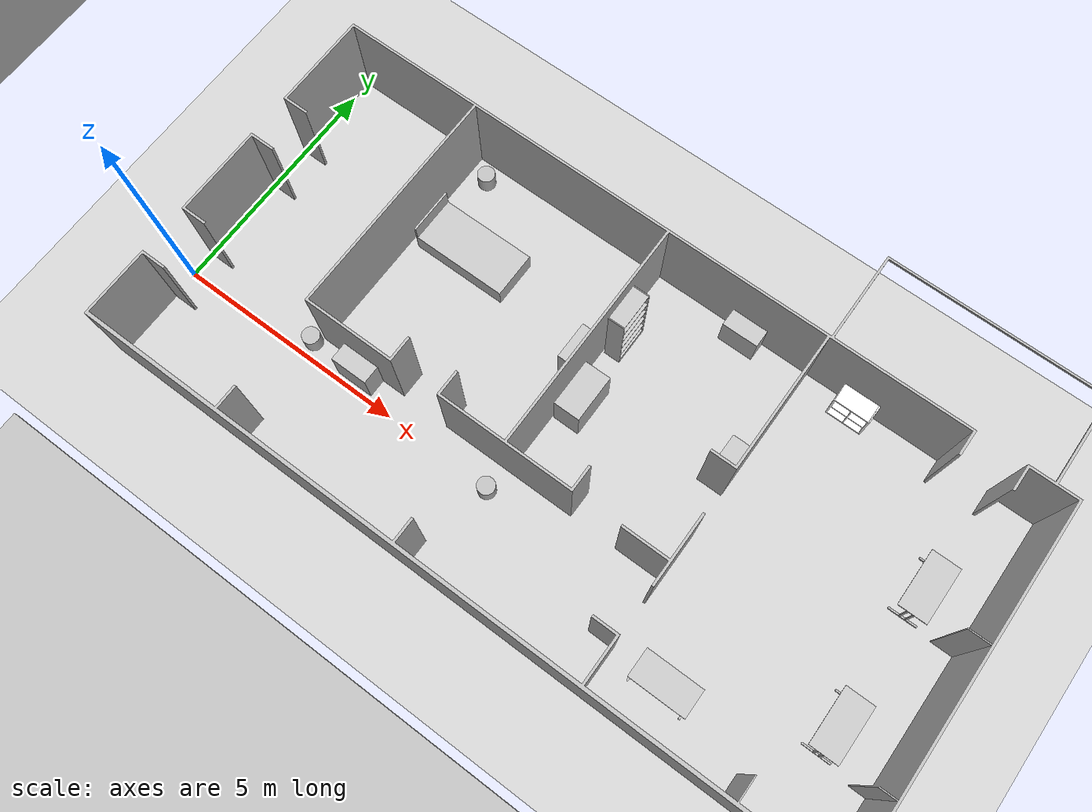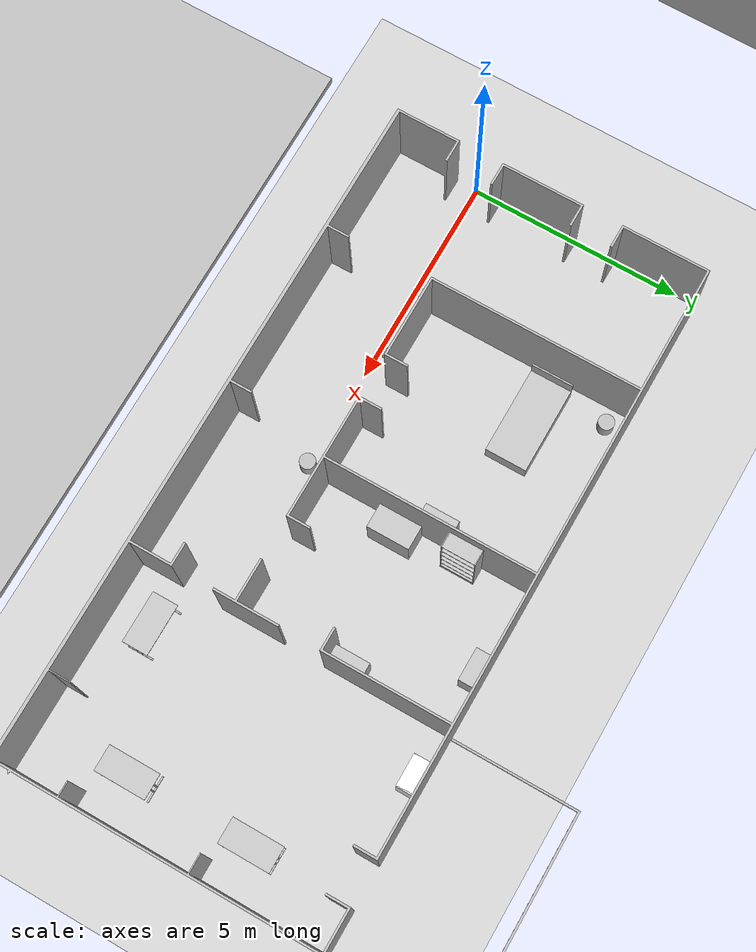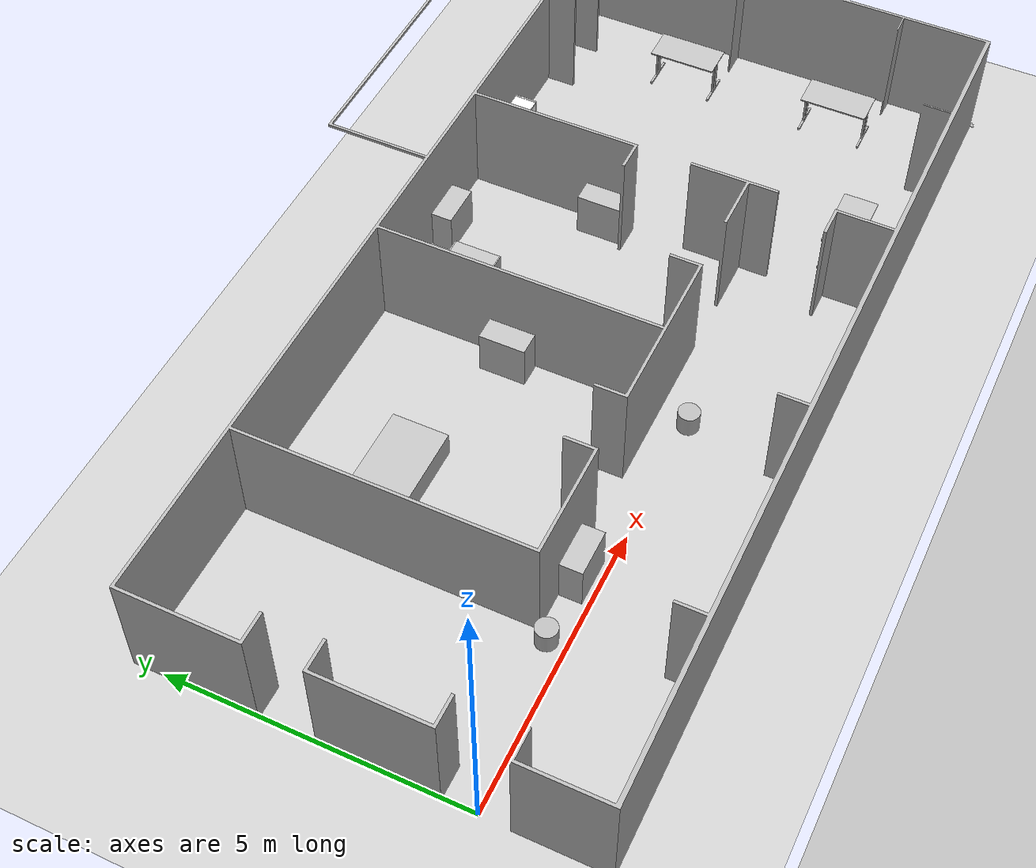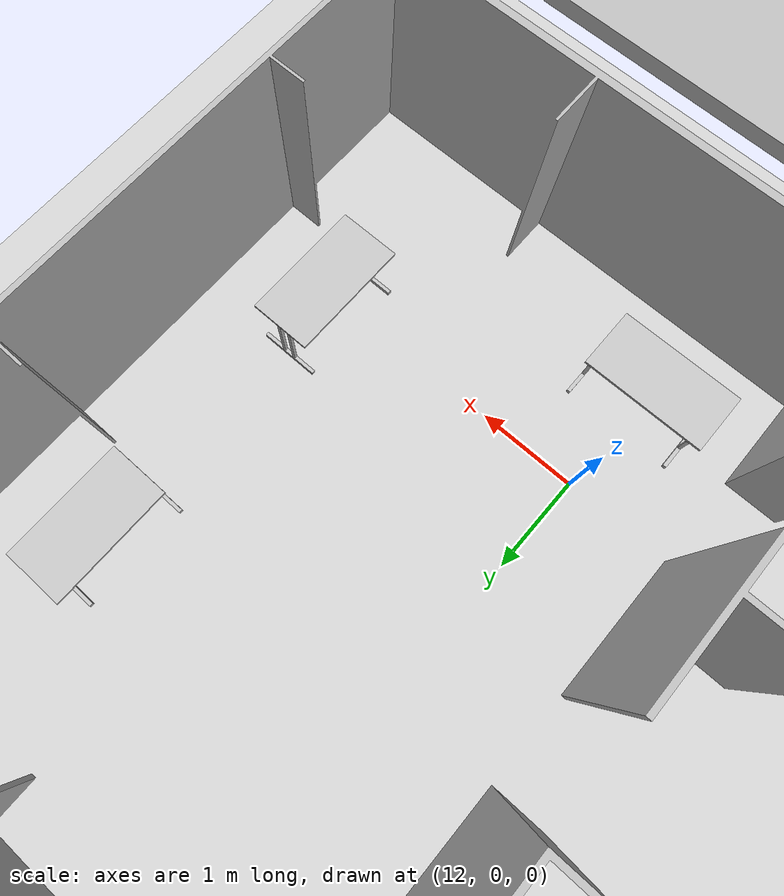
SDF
<?xml version="1.0"?>
<sdf version="1.6">
  <world name="rwc2016b">
    <light name="sun" type="directional">
      <direction>0.5 0.1 -0.9</direction>
      <pose>0 0 10 0 0 0</pose>
      <specular>0.2 0.2 0.2 1</specular>
      <cast_shadows>true</cast_shadows>
      <diffuse>0.8 0.8 0.8 1</diffuse>
      <attenuation>
        <range>1000</range>
        <quadratic>0.001</quadratic>
        <constant>0.9</constant>
        <linear>0.01</linear>
      </attenuation>
    </light>
    <model name="dining_room" type="room">
      <link name="in">
        <virtual_volume name="in_vv">
          <geometry>
            <box>
              <size>5.0 3.92 0.01</size>
            </box>
          </geometry>
          <pose>-0.06 1.27 0.005 0 0 0</pose>
        </virtual_volume>
      </link>
      <pose>13.45 2.25 0 0 0 0</pose>
      <static>true</static>
    </model>
    <model name="kitchen" type="room">
      <link name="in">
        <virtual_volume name="in_vv">
          <geometry>
            <box>
              <size>3.43 4.93 0.01</size>
            </box>
          </geometry>
          <pose>-0.135 0.075 0.005 0 0 0</pose>
        </virtual_volume>
      </link>
      <pose>9.31 2.96 0 0 0 0</pose>
      <static>true</static>
    </model>
    <model name="living_room" type="room">
      <link name="in">
        <virtual_volume name="in_vv">
          <geometry>
            <box>
              <size>5.0 4.49 0.01</size>
            </box>
          </geometry>
          <pose>0.56 0.645 0.005 0 0 0</pose>
        </virtual_volume>
      </link>
      <pose>12.85 -0.39 0 0 0 0</pose>
      <static>true</static>
    </model>
    <model name="corridor" type="room">
      <link name="in">
        <virtual_volume name="in1_vv">
          <geometry>
            <box>
              <size>3.01 7.47 0.01</size>
            </box>
          </geometry>
          <pose>-0.265 2.385 0.005 0 0 0</pose>
        </virtual_volume>
      </link>
      <link name="in">
        <virtual_volume name="in1_vv">
          <geometry>
            <box>
              <size>3.01 7.47 0.01</size>
            </box>
          </geometry>
          <pose>-0.265 2.385 0.005 0 0 0</pose>
        </virtual_volume>
      </link>
      <pose>1.76 -0.64 0 0 0 0</pose>
      <static>true</static>
    </model>
    <model name="bedroom" type="room">
      <link name="in">
        <virtual_volume name="in_vv">
          <geometry>
            <box>
              <size>4.45 4.92 0.01</size>
            </box>
          </geometry>
          <pose>-0.125 0.77 0.005 0 0 0</pose>
        </virtual_volume>
      </link>
      <pose>5.35 2.25 0 0 0 0</pose>
      <static>true</static>
    </model>
    <model name="initial_pose_door_a" type="waypoint">
      <pose>-0.5 0.0 0 0 0 0.0</pose>
      <static>true</static>
    </model>
    <model name="initial_pose_door_b" type="waypoint">
      <pose>-0.5 3.0 0 0 0 0.0</pose>
      <static>true</static>
    </model>
    <model name="initial_pose_door_c" type="waypoint">
      <pose>14.66 5.56 0 0 0 -1.57</pose>
      <static>true</static>
    </model>
    <model name="entry_door_a" type="waypoint">
      <pose>1.0 0.0 0 0 0 0.0</pose>
      <static>true</static>
    </model>
    <model name="entry_door_b" type="waypoint">
      <pose>1.0 3.0 0 0 0 0.0</pose>
      <static>true</static>
    </model>
    <model name="entry_door_c" type="waypoint">
      <pose>14.7 4.0 0 0 0 -1.57</pose>
      <static>true</static>
    </model>
    <model name="exit_door_a" type="waypoint">
      <pose>-1.5 0.0 0 0 0 3.14</pose>
      <static>true</static>
    </model>
    <model name="exit_door_b" type="waypoint">
      <pose>-1.5 3.0 0 0 0 3.14</pose>
      <static>true</static>
    </model>
    <model name="exit_door_c" type="waypoint">
      <pose>14.7 6.5 0 0 0 1.57</pose>
      <static>true</static>
    </model>
    <model name="registration_table1" type="waypoint">
      <pose>9.7 -0.6 0 0 0 0</pose>
      <static>true</static>
    </model>
    <model name="registration_table2" type="waypoint">
      <pose>9.0 -1.4 0 0 0 0</pose>
      <static>true</static>
    </model>
    <model name="registration_table3" type="waypoint">
      <pose>8.4 -0.6 0 0 0 0</pose>
      <static>true</static>
    </model>
    <model name="exit_1_rips" type="waypoint">
      <pose>14.7 6.4 0 0 0 1.57</pose>
      <static>true</static>
    </model>
    <model name="exit_2_rips" type="waypoint">
      <pose>14.7 7.5 0 0 0 1.57</pose>
      <static>true</static>
    </model>
    <model name="exit_3_rips" type="waypoint">
      <pose>14.7 4.3 0 0 0 1.57</pose>
      <static>true</static>
    </model>
    <model name="exit_4_rips" type="waypoint">
      <pose>14.7 6.4 0 0 0 1.57</pose>
      <static>true</static>
    </model>
    <model name="navigation_target1" type="waypoint">
      <pose>9.5 -0.5 0 0 0 -1.57</pose>
      <static>true</static>
    </model>
    <model name="navigation_target2_pre" type="waypoint">
      <pose>12.0 -0.6 0 0 0 -0.87</pose>
      <static>true</static>
    </model>
    <model name="navigation_target2" type="waypoint">
      <pose>13.0 -1.0 0 0 0 -1.57</pose>
      <static>true</static>
    </model>
    <model name="navigation_target3" type="waypoint">
      <pose>2.0 1.5 0 0 0 3.14</pose>
      <static>true</static>
    </model>
    <model name="navigation_door" type="waypoint">
      <pose>-0.7 0.0 0 0 0 0.0</pose>
      <static>true</static>
    </model>
    <model name="navigation_door_1" type="waypoint">
      <pose>-0.7 0.0 0 0 0 0.0</pose>
      <static>true</static>
    </model>
    <model name="navigation_door_2" type="waypoint">
      <pose>-0.7 3.0 0 0 0 0.0</pose>
      <static>true</static>
    </model>
    <model name="navigation_reentrance_door_1" type="waypoint">
      <pose>0.0 0.0 0 0 0 0.0</pose>
      <static>true</static>
    </model>
    <model name="navigation_reentrance_door_2" type="waypoint">
      <pose>0.0 3.0 0 0 0 0.0</pose>
      <static>true</static>
    </model>
    <model name="navigation_target4" type="waypoint">
      <pose>2.0 1.5 0 0 0 0.0</pose>
      <static>true</static>
    </model>
    <model name="navigation_exit1" type="waypoint">
      <pose>-1.0 0.0 0 0 0 3.1415</pose>
      <static>true</static>
    </model>
    <model name="navigation_exit2" type="waypoint">
      <pose>-1.0 3.0 0 0 0 3.1415</pose>
      <static>true</static>
    </model>
    <model name="navigation_exit3" type="waypoint">
      <pose>-2.0 4.5 0 0 0 3.1415</pose>
      <static>true</static>
    </model>
    <model name="navigation_exit4" type="waypoint">
      <pose>-2.0 -1.0 0 0 0 3.1415</pose>
      <static>true</static>
    </model>
    <model name="door_opening_start_1" type="waypoint">
      <pose>-0.5 0.0 0 0 0 0</pose>
      <static>true</static>
    </model>
    <model name="door_opening_dest_1" type="waypoint">
      <pose>0.9 0.0 0 0 0 0</pose>
      <static>true</static>
    </model>
    <model name="door_opening_start_2" type="waypoint">
      <pose>-0.5 3.0 0 0 0 0</pose>
      <static>true</static>
    </model>
    <model name="door_opening_dest_2" type="waypoint">
      <pose>0.9 3.0 0 0 0 0</pose>
      <static>true</static>
    </model>
    <model name="gpsr_meeting_point" type="waypoint">
      <pose>2.006 -1.28 0 0 0 1.57</pose>
      <static>true</static>
    </model>
    <include>
      <pose>0 0 0 0 0 0</pose>
      <name>floor</name>
      <uri>model://ground_plane</uri>
    </include>
    <include>
      <pose>0 0 0 0 0 0</pose>
      <name>walls</name>
      <uri>model://rwc2016b/walls</uri>
    </include>
    <include>
      <pose>4.2350414095 3.61956635071 0.0 0 0 -1.57079632679</pose>
      <name>bed</name>
      <uri>model://rwc2016/bed_frame</uri>
    </include>
    <include>
      <pose>7.20064872224 3.07295793463 0.0 0 0 3.14159265359</pose>
      <name>bedside</name>
      <uri>model://rwc2016/cabinet_2doors</uri>
    </include>
    <include>
      <pose>3.44435067195 5.07663793686 0.0 0 0 0.0</pose>
      <name>plant_small_bedroom</name>
      <uri>model://rwc2016/plant</uri>
    </include>
    <include>
      <pose>7.34685494228 -0.0256348198448 0.0 0 0 0.0</pose>
      <name>plant_small_hall_1</name>
      <uri>model://rwc2016/plant</uri>
    </include>
    <include>
      <pose>7.79068520743 2.35834741039 0.0 0 0 0.0</pose>
      <name>sink</name>
      <uri>model://rwc2016/kitchen_counter</uri>
    </include>
    <include>
      <pose>9.50542128925 5.24257608022 0.0 0 0 -1.57079632679</pose>
      <name>cupboard</name>
      <uri>model://rwc2016/cabinet_2slides</uri>
    </include>
    <include>
      <pose>7.6934243492 3.89551713301 0.0 0 0 0.0</pose>
      <name>bar</name>
      <uri>model://rwc2016/bookcase_noback</uri>
    </include>
    <include>
      <pose>4.03141751655 0.320342320845 0.0 0 0 -1.57079632679</pose>
      <name>cabinet</name>
      <uri>model://rwc2016/cabinet_2doors</uri>
    </include>
    <include>
      <pose>2.843662104 0.322526422217 0.0 0 0 0.0</pose>
      <name>plant_small_hall_2</name>
      <uri>model://rwc2016/plant</uri>
    </include>
    <include>
      <pose>10.6916059274 2.94276122472 0.0 0 0 3.14159265359</pose>
      <name>sideshelf</name>
      <uri>model://rwc2016/cabinet_2doors</uri>
    </include>
    <include>
      <pose>14.8 3.1 0.0 0 0 3.14159265359</pose>
      <name>table1</name>
      <uri>model://rwc2016/table_bureau</uri>
    </include>
    <include>
      <pose>14.8 0.2 0.0 0 0 3.14159265359</pose>
      <name>table2</name>
      <uri>model://rwc2016/table_bureau</uri>
    </include>
    <include>
      <pose>12.0 -1.0 0.0 0 0 1.57079632679</pose>
      <name>table3</name>
      <uri>model://rwc2016/table_bureau</uri>
    </include>
    <include>
      <pose>12.0 5.21299446298 0.0 0 0 -1.57079632679</pose>
      <name>bar</name>
      <uri>model://rwc2016/cabinet_open_small</uri>
    </include>
    <physics type="ode">
      <real_time_update_rate>333.0</real_time_update_rate>
      <max_step_size>0.003</max_step_size>
      <ode>
        <constraints>
          <cfm>0.0001</cfm>
        </constraints>
        <solver>
          <type>quick</type>
          <iters>100</iters>
        </solver>
      </ode>
    </physics>
  </world>
</sdf>

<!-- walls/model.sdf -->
<sdf version="1.6">
  <model name="rwc2016b/walls">
    <link name="1_link">
      <collision name="1_col">
        <geometry>
          <mesh>
            <uri>model://rwc2016b/walls/heightmap.stl</uri>
          </mesh>
        </geometry>
      </collision>
      <visual name="1_vis">
        <geometry>
          <mesh>
            <uri>model://rwc2016b/walls/heightmap.stl</uri>
          </mesh>
        </geometry>
      </visual>
      <pose>0 0 0 0 0 0</pose>
    </link>
    <static>true</static>
  </model>
</sdf>

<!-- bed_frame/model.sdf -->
<sdf version="1.6">
  <model name="rwc2016/bed_frame">
    <link name="1_link">
      <collision name="1_col">
        <geometry>
          <box>
            <size>0.972 2.063 0.445</size>
          </box>
        </geometry>
      </collision>
      <visual name="1_vis">
        <geometry>
          <box>
            <size>0.972 2.063 0.445</size>
          </box>
        </geometry>
        <material>
          <ambient>0.75 0.75 0.75 1</ambient>
        </material>
      </visual>
      <pose>0 0 0.225 0 0 0</pose>
    </link>
    <link name="2_link">
      <collision name="2_col">
        <geometry>
          <box>
            <size>0.972 0.04 0.355</size>
          </box>
        </geometry>
      </collision>
      <visual name="2_vis">
        <geometry>
          <box>
            <size>0.972 0.04 0.355</size>
          </box>
        </geometry>
        <material>
          <ambient>0.75 0.75 0.75 1</ambient>
        </material>
      </visual>
      <pose>0 -1.0115 0.6225 0 0 0</pose>
    </link>
    <link name="in_front_of">
      <virtual_volume name="in_front_of_vv">
        <geometry>
          <box>
            <size>2.172 2.0 0.01</size>
          </box>
        </geometry>
        <pose>0.0 0.5 0.005 0 0 0</pose>
      </virtual_volume>
    </link>
    <static>true</static>
  </model>
</sdf>

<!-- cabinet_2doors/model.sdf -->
<sdf version="1.6">
  <model name="rwc2016/cabinet_2doors">
    <link name="1_link">
      <collision name="1_col">
        <geometry>
          <box>
            <size>0.401 0.8 0.8</size>
          </box>
        </geometry>
      </collision>
      <visual name="1_vis">
        <geometry>
          <box>
            <size>0.401 0.8 0.8</size>
          </box>
        </geometry>
        <material>
          <ambient>0.75 0.75 0.75 1</ambient>
        </material>
      </visual>
      <pose>0 0 0.4 0 0 0</pose>
    </link>
    <link name="on_top_of">
      <virtual_volume name="on_top_of_vv">
        <geometry>
          <box>
            <size>0.341 0.74 0.25</size>
          </box>
        </geometry>
        <pose>0.0 0.0 0.945 0 0 0</pose>
      </virtual_volume>
    </link>
    <link name="in_front_of">
      <virtual_volume name="in_front_of_vv">
        <geometry>
          <box>
            <size>0.2 0.6 0.01</size>
          </box>
        </geometry>
        <pose>0.7005 0.0 0.005 0 0 0</pose>
      </virtual_volume>
    </link>
    <static>true</static>
  </model>
</sdf>

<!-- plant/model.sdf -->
<sdf version="1.6">
  <model name="rwc2016/plant">
    <link name="1_link">
      <collision name="1_col">
        <geometry>
          <cylinder>
            <length>0.376</length>
            <radius>0.1825</radius>
          </cylinder>
        </geometry>
      </collision>
      <visual name="1_vis">
        <geometry>
          <cylinder>
            <length>0.376</length>
            <radius>0.1825</radius>
          </cylinder>
        </geometry>
      </visual>
      <pose>0 0 0.188 0 0 0</pose>
    </link>
    <static>true</static>
  </model>
</sdf>

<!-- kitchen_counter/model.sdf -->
<sdf version="1.6">
  <model name="rwc2016/kitchen_counter">
    <link name="1_link">
      <collision name="1_col">
        <geometry>
          <box>
            <size>0.56 1.0 0.924</size>
          </box>
        </geometry>
      </collision>
      <visual name="1_vis">
        <geometry>
          <box>
            <size>0.56 1.0 0.924</size>
          </box>
        </geometry>
        <material>
          <ambient>0.75 0.75 0.75 1</ambient>
        </material>
      </visual>
      <pose>0 0 0.462 0 0 0</pose>
    </link>
    <link name="on_top_of">
      <virtual_volume name="on_top_of_vv">
        <geometry>
          <box>
            <size>0.5 0.94 0.25</size>
          </box>
        </geometry>
        <pose>0.0 0.0 1.069 0 0 0</pose>
      </virtual_volume>
    </link>
    <link name="in_front_of">
      <virtual_volume name="in_front_of_vv">
        <geometry>
          <box>
            <size>0.2 0.8 0.01</size>
          </box>
        </geometry>
        <pose>0.78 0.0 0.005 0 0 0</pose>
      </virtual_volume>
    </link>
    <static>true</static>
  </model>
</sdf>

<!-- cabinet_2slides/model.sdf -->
<sdf version="1.6">
  <model name="rwc2016/cabinet_2slides">
    <link name="1_link">
      <collision name="1_col">
        <geometry>
          <box>
            <size>0.37 0.768 0.741</size>
          </box>
        </geometry>
      </collision>
      <visual name="1_vis">
        <geometry>
          <box>
            <size>0.37 0.768 0.741</size>
          </box>
        </geometry>
        <material>
          <ambient>0.75 0.75 0.75 1</ambient>
        </material>
      </visual>
      <pose>0 0 0.37 0 0 0</pose>
    </link>
    <link name="on_top_of">
      <virtual_volume name="on_top_of_vv">
        <geometry>
          <box>
            <size>0.31 0.708 0.25</size>
          </box>
        </geometry>
        <pose>0.0 0.0 0.8855 0 0 0</pose>
      </virtual_volume>
    </link>
    <link name="in_front_of">
      <virtual_volume name="in_front_of_vv">
        <geometry>
          <box>
            <size>0.2 0.568 0.01</size>
          </box>
        </geometry>
        <pose>0.685 0.0 0.005 0 0 0</pose>
      </virtual_volume>
    </link>
    <static>true</static>
  </model>
</sdf>

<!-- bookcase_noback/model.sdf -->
<sdf version="1.6">
  <model name="rwc2016/bookcase_noback">
    <link name="1_link">
      <collision name="1_col">
        <geometry>
          <box>
            <size>0.35 0.02 1.798</size>
          </box>
        </geometry>
      </collision>
      <visual name="1_vis">
        <geometry>
          <box>
            <size>0.35 0.02 1.798</size>
          </box>
        </geometry>
        <material>
          <ambient>0.75 0.75 0.75 1</ambient>
        </material>
      </visual>
      <pose>0 -0.39 0.899 0 0 0</pose>
    </link>
    <link name="2_link">
      <collision name="2_col">
        <geometry>
          <box>
            <size>0.35 0.02 1.798</size>
          </box>
        </geometry>
      </collision>
      <visual name="2_vis">
        <geometry>
          <box>
            <size>0.35 0.02 1.798</size>
          </box>
        </geometry>
        <material>
          <ambient>0.75 0.75 0.75 1</ambient>
        </material>
      </visual>
      <pose>0 0.39 0.899 0 0 0</pose>
    </link>
    <link name="3_link">
      <collision name="3_col">
        <geometry>
          <box>
            <size>0.35 0.76 0.02</size>
          </box>
        </geometry>
      </collision>
      <visual name="3_vis">
        <geometry>
          <box>
            <size>0.35 0.76 0.02</size>
          </box>
        </geometry>
        <material>
          <ambient>0.75 0.75 0.75 1</ambient>
        </material>
      </visual>
      <pose>0 0 1.788 0 0 0</pose>
    </link>
    <link name="4_link">
      <collision name="4_col">
        <geometry>
          <box>
            <size>0.35 0.76 0.125</size>
          </box>
        </geometry>
      </collision>
      <visual name="4_vis">
        <geometry>
          <box>
            <size>0.35 0.76 0.125</size>
          </box>
        </geometry>
        <material>
          <ambient>0.75 0.75 0.75 1</ambient>
        </material>
      </visual>
      <pose>0 0 0.0625 0 0 0</pose>
    </link>
    <link name="5_link">
      <collision name="5_col">
        <geometry>
          <box>
            <size>0.35 0.76 0.02</size>
          </box>
        </geometry>
      </collision>
      <visual name="5_vis">
        <geometry>
          <box>
            <size>0.35 0.76 0.02</size>
          </box>
        </geometry>
        <material>
          <ambient>0.75 0.75 0.75 1</ambient>
        </material>
      </visual>
      <pose>0 0 0.38 0 0 0</pose>
    </link>
    <link name="6_link">
      <collision name="6_col">
        <geometry>
          <box>
            <size>0.35 0.76 0.02</size>
          </box>
        </geometry>
      </collision>
      <visual name="6_vis">
        <geometry>
          <box>
            <size>0.35 0.76 0.02</size>
          </box>
        </geometry>
        <material>
          <ambient>0.75 0.75 0.75 1</ambient>
        </material>
      </visual>
      <pose>0 0 0.731 0 0 0</pose>
    </link>
    <link name="7_link">
      <collision name="7_col">
        <geometry>
          <box>
            <size>0.35 0.76 0.02</size>
          </box>
        </geometry>
      </collision>
      <visual name="7_vis">
        <geometry>
          <box>
            <size>0.35 0.76 0.02</size>
          </box>
        </geometry>
        <material>
          <ambient>0.75 0.75 0.75 1</ambient>
        </material>
      </visual>
      <pose>0 0 1.081 0 0 0</pose>
    </link>
    <link name="8_link">
      <collision name="8_col">
        <geometry>
          <box>
            <size>0.35 0.76 0.02</size>
          </box>
        </geometry>
      </collision>
      <visual name="8_vis">
        <geometry>
          <box>
            <size>0.35 0.76 0.02</size>
          </box>
        </geometry>
        <material>
          <ambient>0.75 0.75 0.75 1</ambient>
        </material>
      </visual>
      <pose>0 0 1.431 0 0 0</pose>
    </link>
    <link name="in_front_of">
      <virtual_volume name="in_front_of_vv">
        <geometry>
          <box>
            <size>0.2 0.2 0.01</size>
          </box>
        </geometry>
        <pose>0.675 0.0 0.005 0 0 0</pose>
      </virtual_volume>
    </link>
    <link name="shelf1">
      <virtual_volume name="shelf1_vv">
        <geometry>
          <box>
            <size>0.27 0.7 0.174</size>
          </box>
        </geometry>
        <pose>0.01 0.0 0.232 0 0 0</pose>
      </virtual_volume>
    </link>
    <link name="shelf2">
      <virtual_volume name="shelf2_vv">
        <geometry>
          <box>
            <size>0.27 0.7 0.258</size>
          </box>
        </geometry>
        <pose>0.01 0.0 0.539 0 0 0</pose>
      </virtual_volume>
    </link>
    <link name="shelf3">
      <virtual_volume name="shelf3_vv">
        <geometry>
          <box>
            <size>0.27 0.7 0.255</size>
          </box>
        </geometry>
        <pose>0.01 0.0 0.8875 0 0 0</pose>
      </virtual_volume>
    </link>
    <link name="shelf4">
      <virtual_volume name="shelf4_vv">
        <geometry>
          <box>
            <size>0.27 0.7 0.247</size>
          </box>
        </geometry>
        <pose>0.01 0.0 1.2335 0 0 0</pose>
      </virtual_volume>
    </link>
    <link name="shelf5">
      <virtual_volume name="shelf5_vv">
        <geometry>
          <box>
            <size>0.27 0.7 0.242</size>
          </box>
        </geometry>
        <pose>0.01 0.0 1.582 0 0 0</pose>
      </virtual_volume>
    </link>
    <static>true</static>
  </model>
</sdf>

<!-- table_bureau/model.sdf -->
<sdf version="1.6">
  <model name="rwc2016/table_bureau">
    <link name="1_link">
      <collision name="1_col">
        <geometry>
          <box>
            <size>0.601 1.2 0.025</size>
          </box>
        </geometry>
      </collision>
      <visual name="1_vis">
        <geometry>
          <box>
            <size>0.601 1.2 0.025</size>
          </box>
        </geometry>
        <material>
          <ambient>0.75 0.75 0.75 1</ambient>
        </material>
      </visual>
      <pose>0 0 0.7115 0 0 0</pose>
    </link>
    <link name="2_link">
      <collision name="2_col">
        <geometry>
          <box>
            <size>0.031 0.031 0.699</size>
          </box>
        </geometry>
      </collision>
      <visual name="2_vis">
        <geometry>
          <box>
            <size>0.031 0.031 0.699</size>
          </box>
        </geometry>
        <material>
          <ambient>0.75 0.75 0.75 1</ambient>
        </material>
      </visual>
      <pose>-0.06 -0.5545 0.3495 0 0 0</pose>
    </link>
    <link name="3_link">
      <collision name="3_col">
        <geometry>
          <box>
            <size>0.031 0.031 0.699</size>
          </box>
        </geometry>
      </collision>
      <visual name="3_vis">
        <geometry>
          <box>
            <size>0.031 0.031 0.699</size>
          </box>
        </geometry>
        <material>
          <ambient>0.75 0.75 0.75 1</ambient>
        </material>
      </visual>
      <pose>-0.06 0.5545 0.3495 0 0 0</pose>
    </link>
    <link name="4_link">
      <collision name="4_col">
        <geometry>
          <box>
            <size>0.031 0.031 0.699</size>
          </box>
        </geometry>
      </collision>
      <visual name="4_vis">
        <geometry>
          <box>
            <size>0.031 0.031 0.699</size>
          </box>
        </geometry>
        <material>
          <ambient>0.75 0.75 0.75 1</ambient>
        </material>
      </visual>
      <pose>0.06 -0.5545 0.3495 0 0 0</pose>
    </link>
    <link name="5_link">
      <collision name="5_col">
        <geometry>
          <box>
            <size>0.031 0.031 0.699</size>
          </box>
        </geometry>
      </collision>
      <visual name="5_vis">
        <geometry>
          <box>
            <size>0.031 0.031 0.699</size>
          </box>
        </geometry>
        <material>
          <ambient>0.75 0.75 0.75 1</ambient>
        </material>
      </visual>
      <pose>0.06 0.5545 0.3495 0 0 0</pose>
    </link>
    <link name="6_link">
      <collision name="6_col">
        <geometry>
          <box>
            <size>0.603 0.036 0.045</size>
          </box>
        </geometry>
      </collision>
      <visual name="6_vis">
        <geometry>
          <box>
            <size>0.603 0.036 0.045</size>
          </box>
        </geometry>
        <material>
          <ambient>0.75 0.75 0.75 1</ambient>
        </material>
      </visual>
      <pose>0.0 0.555 0.0225 0 0 0</pose>
    </link>
    <link name="7_link">
      <collision name="7_col">
        <geometry>
          <box>
            <size>0.603 0.036 0.045</size>
          </box>
        </geometry>
      </collision>
      <visual name="7_vis">
        <geometry>
          <box>
            <size>0.603 0.036 0.045</size>
          </box>
        </geometry>
        <material>
          <ambient>0.75 0.75 0.75 1</ambient>
        </material>
      </visual>
      <pose>0.0 -0.555 0.0225 0 0 0</pose>
    </link>
    <link name="on_top_of">
      <virtual_volume name="on_top_of_vv">
        <geometry>
          <box>
            <size>0.541 1.14 0.25</size>
          </box>
        </geometry>
        <pose>0.0 0.0 0.869 0 0 0</pose>
      </virtual_volume>
    </link>
    <link name="in_front_of">
      <virtual_volume name="in_front_of_vv">
        <geometry>
          <box>
            <size>0.48 0.9 0.01</size>
          </box>
        </geometry>
        <pose>0.86 0.0 0.005 0 0 0</pose>
      </virtual_volume>
    </link>
    <static>true</static>
  </model>
</sdf>

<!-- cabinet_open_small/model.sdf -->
<sdf version="1.6">
  <model name="rwc2016/cabinet_open_small">
    <link name="1_link">
      <collision name="1_col">
        <geometry>
          <box>
            <size>0.393 0.034 0.764</size>
          </box>
        </geometry>
      </collision>
      <visual name="1_vis">
        <geometry>
          <box>
            <size>0.393 0.034 0.764</size>
          </box>
        </geometry>
        <material>
          <ambient>1.0 1.0 1.0 1</ambient>
        </material>
      </visual>
      <pose>0 -0.366 0.382 0 0 0</pose>
    </link>
    <link name="2_link">
      <collision name="2_col">
        <geometry>
          <box>
            <size>0.393 0.034 0.764</size>
          </box>
        </geometry>
      </collision>
      <visual name="2_vis">
        <geometry>
          <box>
            <size>0.393 0.034 0.764</size>
          </box>
        </geometry>
        <material>
          <ambient>1.0 1.0 1.0 1</ambient>
        </material>
      </visual>
      <pose>0 0.366 0.382 0 0 0</pose>
    </link>
    <link name="3_link">
      <collision name="3_col">
        <geometry>
          <box>
            <size>0.393 0.764 0.034</size>
          </box>
        </geometry>
      </collision>
      <visual name="3_vis">
        <geometry>
          <box>
            <size>0.393 0.764 0.034</size>
          </box>
        </geometry>
        <material>
          <ambient>1.0 1.0 1.0 1</ambient>
        </material>
      </visual>
      <pose>0 0 0.747 0 0 0</pose>
    </link>
    <link name="4_link">
      <collision name="4_col">
        <geometry>
          <box>
            <size>0.393 0.764 0.034</size>
          </box>
        </geometry>
      </collision>
      <visual name="4_vis">
        <geometry>
          <box>
            <size>0.393 0.764 0.034</size>
          </box>
        </geometry>
        <material>
          <ambient>1.0 1.0 1.0 1</ambient>
        </material>
      </visual>
      <pose>0 0 0.025 0 0 0</pose>
    </link>
    <link name="5_link">
      <collision name="5_col">
        <geometry>
          <box>
            <size>0.393 0.69 0.02</size>
          </box>
        </geometry>
      </collision>
      <visual name="5_vis">
        <geometry>
          <box>
            <size>0.393 0.69 0.02</size>
          </box>
        </geometry>
        <material>
          <ambient>1.0 1.0 1.0 1</ambient>
        </material>
      </visual>
      <pose>0 0 0.382 0 0 0</pose>
    </link>
    <link name="6_link">
      <collision name="6_col">
        <geometry>
          <box>
            <size>0.393 0.02 0.69</size>
          </box>
        </geometry>
      </collision>
      <visual name="6_vis">
        <geometry>
          <box>
            <size>0.393 0.02 0.69</size>
          </box>
        </geometry>
        <material>
          <ambient>1.0 1.0 1.0 1</ambient>
        </material>
      </visual>
      <pose>0 0 0.382 0 0 0</pose>
    </link>
    <link name="in_front_of">
      <virtual_volume name="in_front_of_vv">
        <geometry>
          <box>
            <size>0.5 0.79 0</size>
          </box>
        </geometry>
        <pose>0.45 0.0 0.0 0 0 0</pose>
      </virtual_volume>
    </link>
    <link name="on_top_of">
      <virtual_volume name="on_top_of_vv">
        <geometry>
          <box>
            <size>0.34 0.74 0.425</size>
          </box>
        </geometry>
        <pose>0.0 0.0 0.9875 0 0 0</pose>
      </virtual_volume>
    </link>
    <static>true</static>
  </model>
</sdf>
